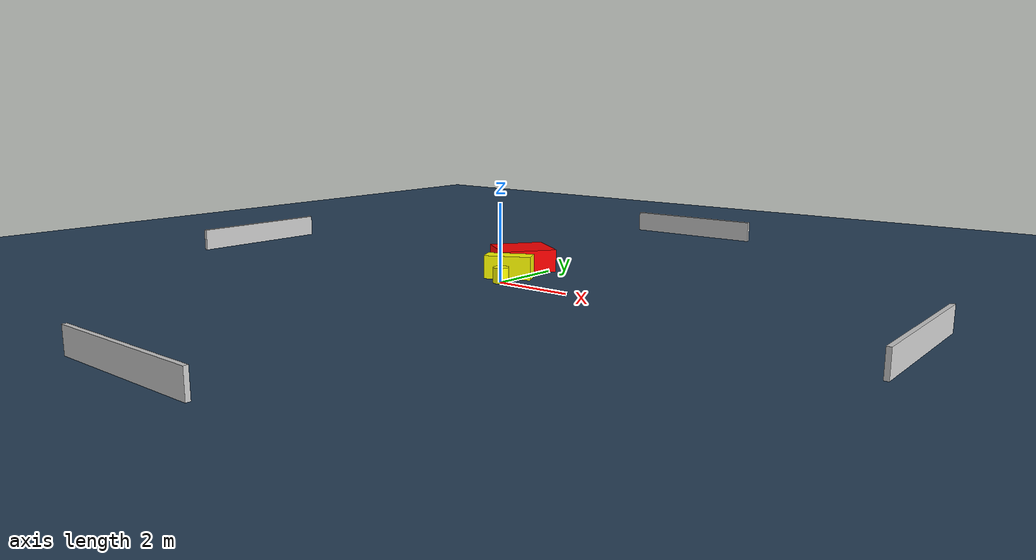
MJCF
<?xml version="1.0" ?>
<mujoco model="generated_environment">
  <option timestep="0.01" integrator="RK4" cone="elliptic"/>
  <default>
    <geom density="1"/>
  </default>
  <asset>
    <texture builtin="gradient" height="3072" name="skybox" rgb1="0.3 0.5 0.7" rgb2="0 0 0" type="skybox" width="512"/>
    <texture builtin="checker" height="300" name="groundplane" rgb1="0.2 0.3 0.4" rgb2="0.1 0.2 0.3" type="2d" width="300"/>
    <material name="groundplane" reflectance="0.2" texrepeat="5 5" texture="groundplane"/>
  </asset>
  <worldbody>
    <light dir="0 0 -1" directional="true" pos="0 0 1.5"/>
    <geom condim="3" friction="0.5 0.005 0.001" material="groundplane" name="floor" pos="0 0 0" size="0 0 0.05" type="plane"/>
    <body name="walls">
      <geom name="wall_1" condim="4" pos="-10.0 0.0 0.3" rgba="0.800000011920929 0.800000011920929 0.800000011920929 1.0" size="0.05 2.0 0.3" type="box"/>
      <geom name="wall_2" condim="4" pos="10.0 0.0 0.3" rgba="0.800000011920929 0.800000011920929 0.800000011920929 1.0" size="0.05 2.0 0.3" type="box"/>
      <geom name="wall_3" condim="4" pos="0.0 -10.0 0.3" rgba="0.800000011920929 0.800000011920929 0.800000011920929 1.0" size="2.0 0.05 0.3" type="box"/>
      <geom name="wall_4" condim="4" pos="0.0 10.0 0.3" rgba="0.800000011920929 0.800000011920929 0.800000011920929 1.0" size="2.0 0.05 0.3" type="box"/>
    </body>
    <body name="robot">
      <joint name="joint_x" type="slide" pos="0 0 0" axis="1 0 0"/>
      <joint name="joint_y" type="slide" pos="0 0 0" axis="0 1 0"/>
      <geom name="robot" type="cylinder" pos="0.0 0.0 0.2" size="0.2 0.2 0.0" mass="5.0" friction="1.0 0.005 0.0001" condim="4" rgba="1.0 1.0 0.0 1.0"/>
    </body>
    <body name="obstacle_1_movable">
      <geom name="obstacle_1_movable" condim="4" pos="-0.2333387905219854 0.604145336928392 0.3" euler="0 0 206.7376965775312" friction="0.0 0.005 0.001" rgba="1.0 1.0 0.0 1.0" size="0.6049866791380162 0.24252471270079573 0.3" type="box" mass="0.1"/>
      <joint type="free"/>
    </body>
    <body name="obstacle_2_static">
      <geom name="obstacle_2_static" condim="4" pos="-0.7113966788653623 1.7685579294372265 0.3" euler="0 0 325.04888286720944" friction="0.0 0.005 0.001" rgba="1.0 0.0 0.0 1.0" size="0.6568768949341661 0.7327559307119516 0.3" type="box"/>
    </body>
  </worldbody>
  <actuator>
    <motor name="actuator_x" joint="joint_x" gear="1" ctrlrange="-1 1"/>
    <motor name="actuator_y" joint="joint_y" gear="1" ctrlrange="-1 1"/>
  </actuator>
</mujoco>
